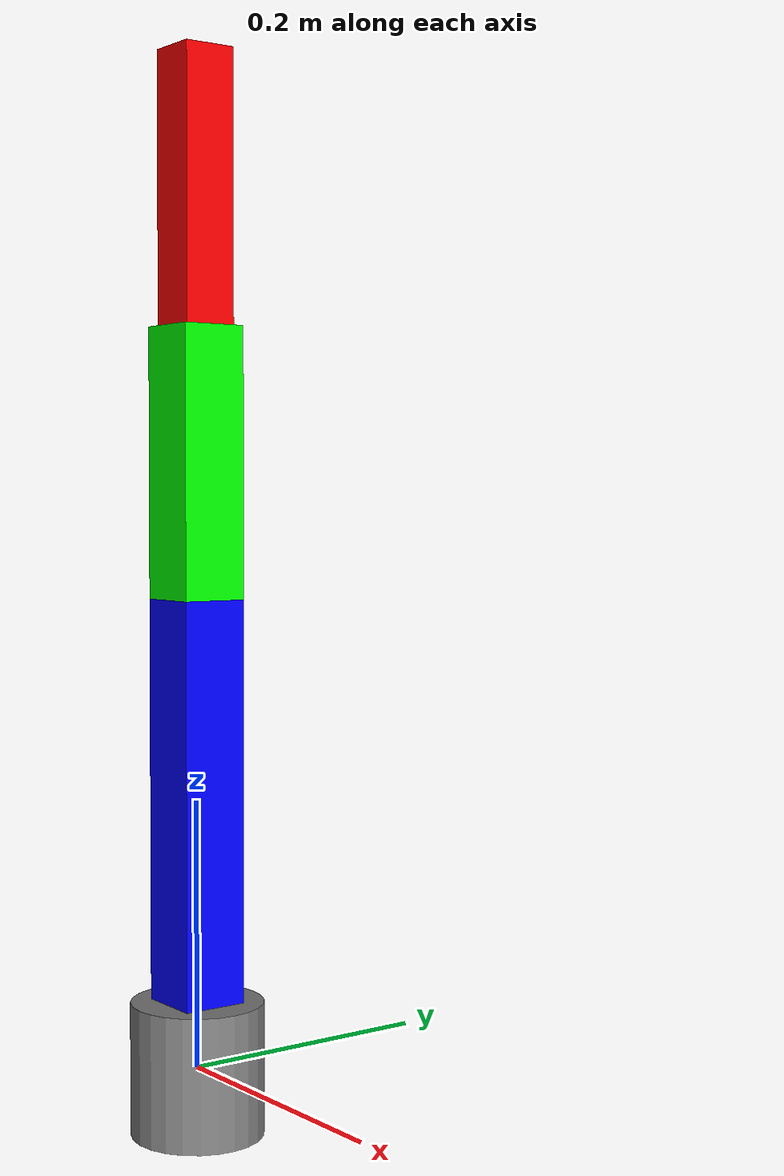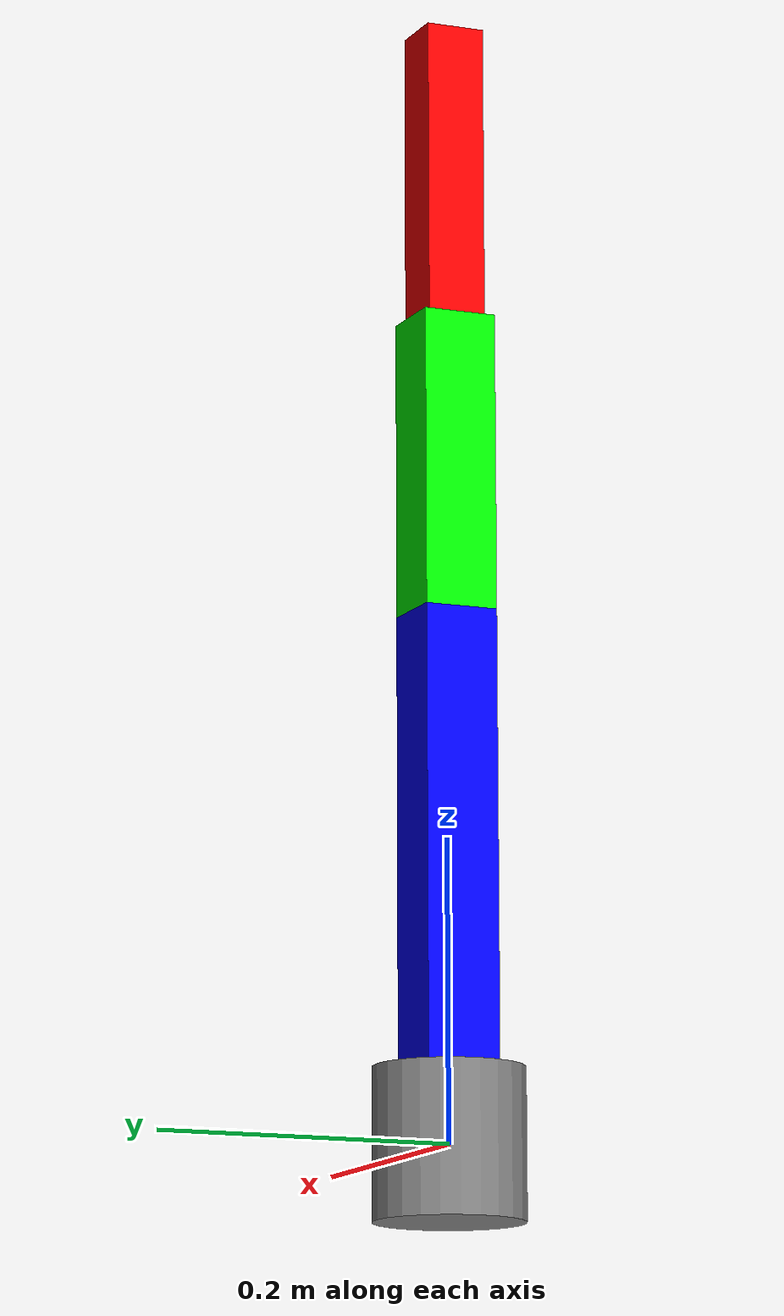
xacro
<?xml version="1.0"?>
<robot xmlns:xacro="http://ros.org/wiki/xacro" name="simple_arm_3dof">

  <!-- Importar descripción y control -->
  <xacro:include filename="$(find mi_br)/urdf/simple_arm_description.urdf.xacro"/>
  <xacro:include filename="$(find mi_br)/urdf/simple_arm_ros2_control.xacro"/>
  <xacro:simple_arm_ros2_control name="SimpleArmHardware" prefix="" use_gazebo="true"/>
  <!-- Instanciar descripción -->
<xacro:simple_arm parent="world" prefix="">
  <origin xyz="0 0 0" rpy="0 0 0"/>
</xacro:simple_arm>

  <!-- Instanciar control -->
  <xacro:simple_arm_ros2_control name="simple_arm" prefix="" use_gazebo="true"/>

</robot>

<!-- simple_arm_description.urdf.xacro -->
<robot xmlns:xacro="http://ros.org/wiki/xacro" name="simple_arm_3dof">

  <xacro:macro name="simple_arm" params="parent prefix *origin">

    <!-- Base Link -->
    <link name="${prefix}base_link">
      <visual>
        <geometry>
          <cylinder length="0.1" radius="0.05"/>
        </geometry>
        <material name="gray">
          <color rgba="0.5 0.5 0.5 1"/>
        </material>
      </visual>
      <collision>
        <geometry>
          <cylinder length="0.1" radius="0.05"/>
        </geometry>
      </collision>
      <inertial>
        <mass value="0.5"/>
        <inertia ixx="0.001" ixy="0.0" ixz="0.0"
                 iyy="0.001" iyz="0.0"
                 izz="0.001"/>
      </inertial>
    </link>

    <!-- Joint1 -->
    <joint name="${prefix}joint1" type="revolute">
      <parent link="${prefix}base_link"/>
      <child link="${prefix}link1"/>
      <origin xyz="0 0 0.05"/>
      <axis xyz="0 0 1"/>
      <limit lower="-1.57" upper="1.57" effort="1.0" velocity="1.0"/>
    </joint>

    <!-- Link1 -->
    <link name="${prefix}link1">
      <visual>
        <origin xyz="0 0 0.15"/>
        <geometry>
          <box size="0.05 0.05 0.3"/>
        </geometry>
        <material name="blue">
          <color rgba="0 0 1 1"/>
        </material>
      </visual>
      <collision>
        <origin xyz="0 0 0.15"/>
        <geometry>
          <box size="0.05 0.05 0.3"/>
        </geometry>
      </collision>
      <inertial>
        <mass value="0.3"/>
        <inertia ixx="0.001" ixy="0.0" ixz="0.0"
                 iyy="0.001" iyz="0.0"
                 izz="0.001"/>
      </inertial>
    </link>

    <!-- Joint2 -->
    <joint name="${prefix}joint2" type="revolute">
      <parent link="${prefix}link1"/>
      <child link="${prefix}link2"/>
      <origin xyz="0 0 0.3"/>
      <axis xyz="0 1 0"/>
      <limit lower="-1.57" upper="1.57" effort="1.0" velocity="1.0"/>
    </joint>

    <!-- Link2 -->
    <link name="${prefix}link2">
      <visual>
        <origin xyz="0 0 0.1"/>
        <geometry>
          <box size="0.05 0.05 0.2"/>
        </geometry>
        <material name="green">
          <color rgba="0 1 0 1"/>
        </material>
      </visual>
      <collision>
        <origin xyz="0 0 0.1"/>
        <geometry>
          <box size="0.05 0.05 0.2"/>
        </geometry>
      </collision>
      <inertial>
        <mass value="0.2"/>
        <inertia ixx="0.0005" ixy="0.0" ixz="0.0"
                 iyy="0.0005" iyz="0.0"
                 izz="0.0005"/>
      </inertial>
    </link>

    <!-- Joint3 -->
    <joint name="${prefix}joint3" type="revolute">
      <parent link="${prefix}link2"/>
      <child link="${prefix}link3"/>
      <origin xyz="0 0 0.2"/>
      <axis xyz="0 1 0"/>
      <limit lower="-1.57" upper="1.57" effort="1.0" velocity="1.0"/>
    </joint>

    <!-- Link3 -->
    <link name="${prefix}link3">
      <visual>
        <origin xyz="0 0 0.1"/>
        <geometry>
          <box size="0.04 0.04 0.2"/>
        </geometry>
        <material name="red">
          <color rgba="1 0 0 1"/>
        </material>
      </visual>
      <collision>
        <origin xyz="0 0 0.1"/>
        <geometry>
          <box size="0.04 0.04 0.2"/>
        </geometry>
      </collision>
      <inertial>
        <mass value="0.15"/>
        <inertia ixx="0.0003" ixy="0.0" ixz="0.0"
                 iyy="0.0003" iyz="0.0"
                 izz="0.0003"/>
      </inertial>
    </link>

<transmission name="joint1_trans">
  <type>transmission_interface/SimpleTransmission</type>
  <joint name="joint1">
    <hardwareInterface>position</hardwareInterface>
  </joint>
  <actuator name="joint1_motor">
    <hardwareInterface>position</hardwareInterface>
  </actuator>
</transmission>

<transmission name="joint2_trans">
  <type>transmission_interface/SimpleTransmission</type>
  <joint name="joint2">
    <hardwareInterface>position</hardwareInterface>
  </joint>
  <actuator name="joint2_motor">
    <hardwareInterface>position</hardwareInterface>
  </actuator>
</transmission>

<transmission name="joint3_trans">
  <type>transmission_interface/SimpleTransmission</type>
  <joint name="joint3">
    <hardwareInterface>position</hardwareInterface>
  </joint>
  <actuator name="joint3_motor">
    <hardwareInterface>position</hardwareInterface>
  </actuator>
</transmission>

  <gazebo>
   <plugin filename="libgazebo_ros2_control.so" name="gazebo_ros2_control">
    <parameters>$(find mi_br)/config/ros2_control.yaml</parameters>
   </plugin>
  </gazebo>

  </xacro:macro>
</robot>
